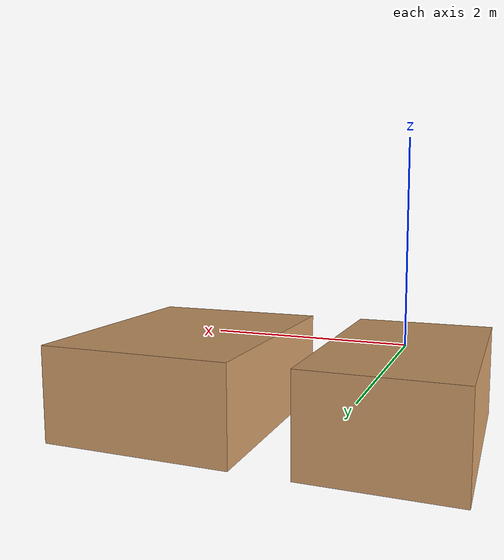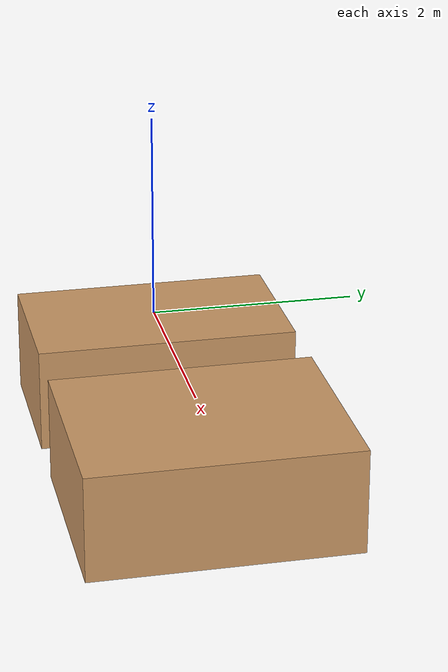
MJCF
<mujoco model="trench_box_terrain">
  <asset>
    <mesh name="trench_box_terrain_mesh0" file="meshs/trench_box_terrain_mesh0.stl"/>
    <mesh name="trench_box_terrain_mesh1" file="meshs/trench_box_terrain_mesh1.stl"/>
  </asset>
  <worldbody>
    <geom type="mesh" mesh="trench_box_terrain_mesh0" rgba="0.8 0.6 0.4 1" pos="-0.8 -1.25 -0.05" contype="1" conaffinity="1" group="1"/>
    <geom type="mesh" mesh="trench_box_terrain_mesh1" rgba="0.8 0.6 0.4 1" pos="-0.8 -1.25 -0.05" contype="1" conaffinity="1" group="1"/>
  </worldbody>
  <custom>
    <text name="terrain:trench_box_terrain" data="difficulty:0.8279504967218619"/>
  </custom>
</mujoco>
